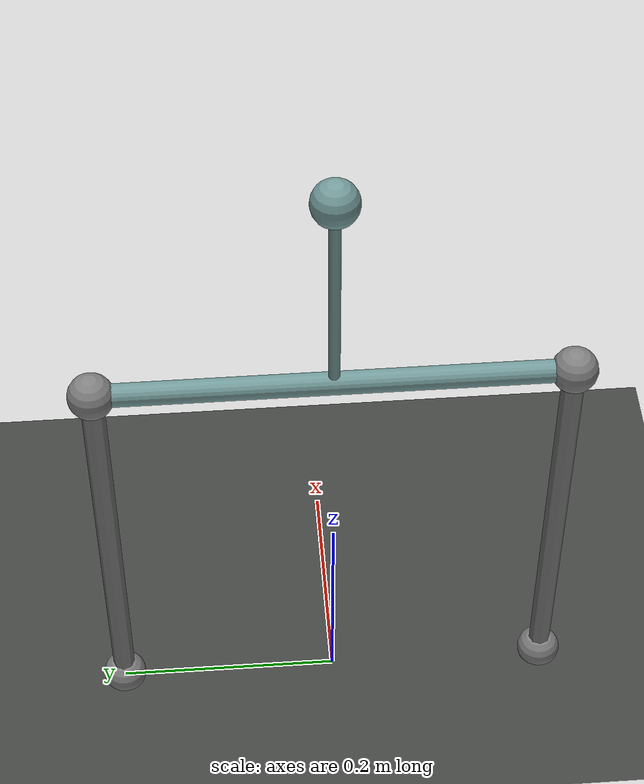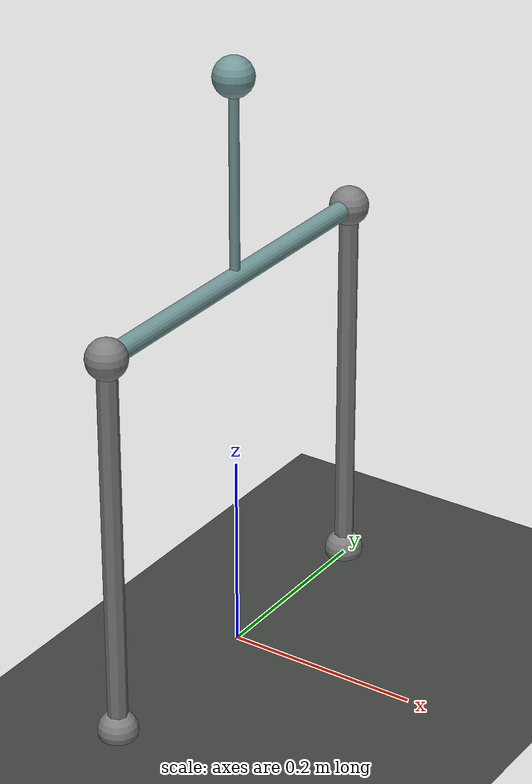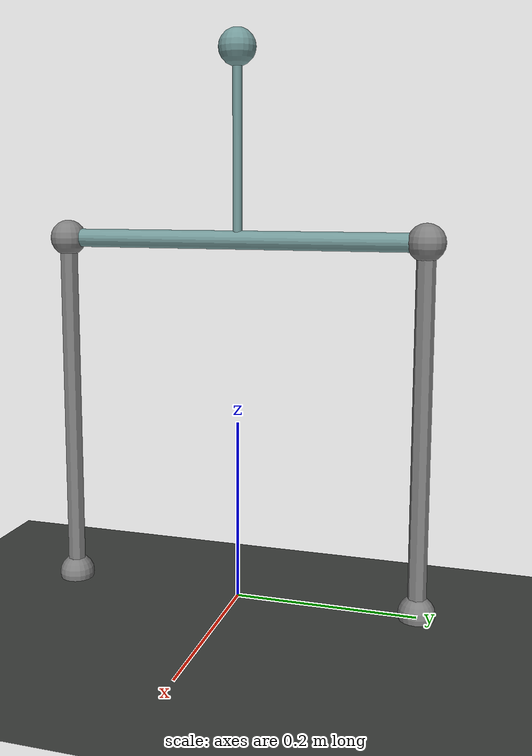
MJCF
<mujoco model="inverted pendulum">
	<compiler 	angle="radian"/>

	<option	timestep="0.01" integrator="RK4" gravity="0 0 -9.81"/>

	<default>
	<geom  rgba="0.45 0.6 0.6 1"/>
		<site type="sphere" size="0.02"/>
	</default>
	<worldbody>

		<light directional="true" cutoff="4" exponent="20" diffuse="1 1 1" specular="0 0 0" pos=".9 .3 2.5" dir="-.9 -.3 -2.5 "/>
		<camera name="cam1" pos="-2.510 -2.202 2.585" xyaxes="0.659 -0.752 -0.000 0.460 0.404 0.791"/>

		<!-- ======= Ground ======= -->
		<geom name="ground" type="plane" pos="0 0 0" size="0.5 1 2" rgba=" .25 .26 .25 1"/>
		<site name="rFix" pos="0 -.2 .005"/>
		<site name="lFix" pos="0 .2 .005"/>

		<!-- ======= Beam ======= -->
		<body name="beam" pos="0 0 .5">
			<!--density of the rod is ten times smaller than other objects (e.g. the ball) for a better point mass approximation-->
            <geom name="rod" type="cylinder" pos="0 0 0.0" size=".005 .1" density="100"/>
			<geom pos="0 0 -.1" type="capsule" size=".01 .2" euler="1.57 0 0"/>
			<joint name="pivot" pos="0 0 -0.1" axis="0 1 0" limited="false"/>
			<site name="rBeam" pos="0 -.2 -.1"/>
			<site name="lBeam" pos="0 .2 -.1"/>
			<body name="ballbody" pos="0 0 0.1">
				<geom name="ballgeom" type="sphere" size=".02"/>
			</body>
		</body>
	</worldbody>

	<tendon>
		<spatial name="lThread" width="0.01">
			<site site="lBeam"/>
			<site site="lFix"/>
		</spatial>

		<spatial name="rThread"  width="0.01">
			<site site="rBeam"/>
			<site site="rFix"/>
		</spatial>
	</tendon>

	<actuator>
        <motor joint='pivot' name='motor' gear="1" forcelimited="true" forcerange="-10 10"/>
	</actuator>

	<sensor>
		<jointpos name="encoder" joint="pivot" noise="0.001"/>
	</sensor>
</mujoco>
